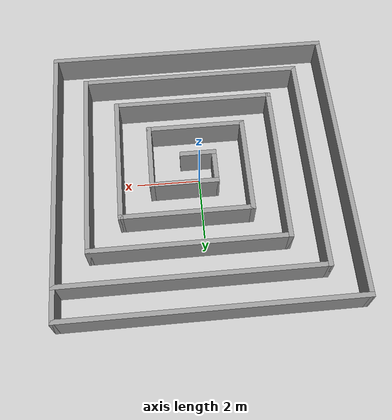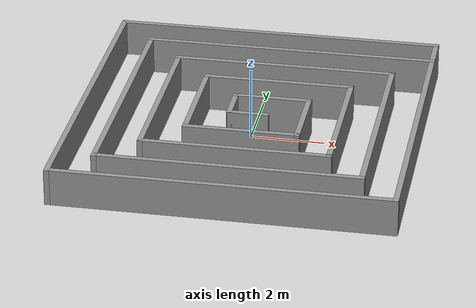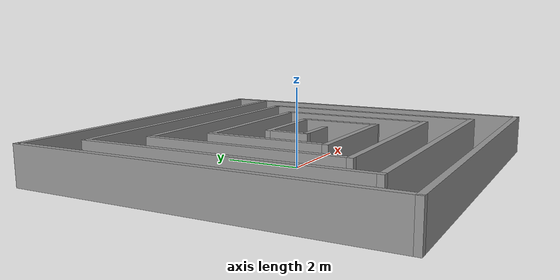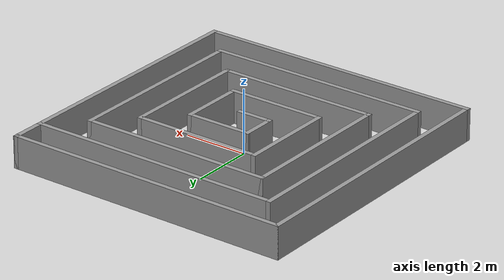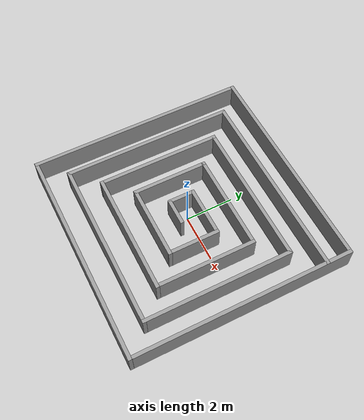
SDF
<?xml version='1.0'?>
<sdf version='1.6'>
  <model name='ModelRoom10'>
    <pose frame=''>0 0 0 0 -0 0</pose>
    <link name='Wall_0'>
      <collision name='Wall_0_Collision'>
        <geometry>
          <box>
            <size>1.15 0.15 1</size>
          </box>
        </geometry>
        <pose frame=''>0 0 0.5 0 -0 0</pose>
      </collision>
      <visual name='Wall_0_Visual'>
        <pose frame=''>0 0 0.5 0 -0 0</pose>
        <geometry>
          <box>
            <size>1.15 0.15 1</size>
          </box>
        </geometry>
        <material>
          <script>
            <uri>file://media/materials/scripts/gazebo.material</uri>
            <name>Gazebo/Grey</name>
          </script>
          <ambient>1 1 1 1</ambient>
        </material>
      </visual>
      <pose frame=''>-0.5 0 0 0 0 -1.5708</pose>
    </link>
    <link name='Wall_10'>
      <collision name='Wall_10_Collision'>
        <geometry>
          <box>
            <size>2.15 0.15 1</size>
          </box>
        </geometry>
        <pose frame=''>0 0 0.5 0 -0 0</pose>
      </collision>
      <visual name='Wall_10_Visual'>
        <pose frame=''>0 0 0.5 0 -0 0</pose>
        <geometry>
          <box>
            <size>2.15 0.15 1</size>
          </box>
        </geometry>
        <material>
          <script>
            <uri>file://media/materials/scripts/gazebo.material</uri>
            <name>Gazebo/Grey</name>
          </script>
          <ambient>1 1 1 1</ambient>
        </material>
      </visual>
      <pose frame=''>1.5 -0.5 0 0 0 -1.5708</pose>
    </link>
    <link name='Wall_12'>
      <collision name='Wall_12_Collision'>
        <geometry>
          <box>
            <size>4.15 0.15 1</size>
          </box>
        </geometry>
        <pose frame=''>0 0 0.5 0 -0 0</pose>
      </collision>
      <visual name='Wall_12_Visual'>
        <pose frame=''>0 0 0.5 0 -0 0</pose>
        <geometry>
          <box>
            <size>4.15 0.15 1</size>
          </box>
        </geometry>
        <material>
          <script>
            <uri>file://media/materials/scripts/gazebo.material</uri>
            <name>Gazebo/Grey</name>
          </script>
          <ambient>1 1 1 1</ambient>
        </material>
      </visual>
      <pose frame=''>2.5 -0.5 0 0 0 -1.5708</pose>
    </link>
    <link name='Wall_14'>
      <collision name='Wall_14_Collision'>
        <geometry>
          <box>
            <size>9.15 0.15 1</size>
          </box>
        </geometry>
        <pose frame=''>0 0 0.5 0 -0 0</pose>
      </collision>
      <visual name='Wall_14_Visual'>
        <pose frame=''>0 0 0.5 0 -0 0</pose>
        <geometry>
          <box>
            <size>9.15 0.15 1</size>
          </box>
        </geometry>
        <material>
          <script>
            <uri>file://media/materials/scripts/gazebo.material</uri>
            <name>Gazebo/Grey</name>
          </script>
          <ambient>1 1 1 1</ambient>
        </material>
      </visual>
      <pose frame=''>4.5 0 0 0 0 -1.5708</pose>
    </link>
    <link name='Wall_16'>
      <collision name='Wall_16_Collision'>
        <geometry>
          <box>
            <size>6.15 0.15 1</size>
          </box>
        </geometry>
        <pose frame=''>0 0 0.5 0 -0 0</pose>
      </collision>
      <visual name='Wall_16_Visual'>
        <pose frame=''>0 0 0.5 0 -0 0</pose>
        <geometry>
          <box>
            <size>6.15 0.15 1</size>
          </box>
        </geometry>
        <material>
          <script>
            <uri>file://media/materials/scripts/gazebo.material</uri>
            <name>Gazebo/Grey</name>
          </script>
          <ambient>1 1 1 1</ambient>
        </material>
      </visual>
      <pose frame=''>3.5 -0.5 0 0 0 -1.5708</pose>
    </link>
    <link name='Wall_18'>
      <collision name='Wall_18_Collision'>
        <geometry>
          <box>
            <size>2.15 0.15 1</size>
          </box>
        </geometry>
        <pose frame=''>0 0 0.5 0 -0 0</pose>
      </collision>
      <visual name='Wall_18_Visual'>
        <pose frame=''>0 0 0.5 0 -0 0</pose>
        <geometry>
          <box>
            <size>2.15 0.15 1</size>
          </box>
        </geometry>
        <material>
          <script>
            <uri>file://media/materials/scripts/gazebo.material</uri>
            <name>Gazebo/Grey</name>
          </script>
          <ambient>1 1 1 1</ambient>
        </material>
      </visual>
      <pose frame=''>0.5 0.5 0 0 -0 0</pose>
    </link>
    <link name='Wall_2'>
      <collision name='Wall_2_Collision'>
        <geometry>
          <box>
            <size>3.15 0.15 1</size>
          </box>
        </geometry>
        <pose frame=''>0 0 0.5 0 -0 0</pose>
      </collision>
      <visual name='Wall_2_Visual'>
        <pose frame=''>0 0 0.5 0 -0 0</pose>
        <geometry>
          <box>
            <size>3.15 0.15 1</size>
          </box>
        </geometry>
        <material>
          <script>
            <uri>file://media/materials/scripts/gazebo.material</uri>
            <name>Gazebo/Grey</name>
          </script>
          <ambient>1 1 1 1</ambient>
        </material>
      </visual>
      <pose frame=''>-1.5 0 0 0 -0 1.5708</pose>
    </link>
    <link name='Wall_20'>
      <collision name='Wall_20_Collision'>
        <geometry>
          <box>
            <size>4.15 0.15 1</size>
          </box>
        </geometry>
        <pose frame=''>0 0 0.5 0 -0 0</pose>
      </collision>
      <visual name='Wall_20_Visual'>
        <pose frame=''>0 0 0.5 0 -0 0</pose>
        <geometry>
          <box>
            <size>4.15 0.15 1</size>
          </box>
        </geometry>
        <material>
          <script>
            <uri>file://media/materials/scripts/gazebo.material</uri>
            <name>Gazebo/Grey</name>
          </script>
          <ambient>1 1 1 1</ambient>
        </material>
      </visual>
      <pose frame=''>0.5 1.5 0 0 -0 0</pose>
    </link>
    <link name='Wall_22'>
      <collision name='Wall_22_Collision'>
        <geometry>
          <box>
            <size>6.15 0.15 1</size>
          </box>
        </geometry>
        <pose frame=''>0 0 0.5 0 -0 0</pose>
      </collision>
      <visual name='Wall_22_Visual'>
        <pose frame=''>0 0 0.5 0 -0 0</pose>
        <geometry>
          <box>
            <size>6.15 0.15 1</size>
          </box>
        </geometry>
        <material>
          <script>
            <uri>file://media/materials/scripts/gazebo.material</uri>
            <name>Gazebo/Grey</name>
          </script>
          <ambient>1 1 1 1</ambient>
        </material>
      </visual>
      <pose frame=''>0.5 2.5 0 0 -0 0</pose>
    </link>
    <link name='Wall_24'>
      <collision name='Wall_24_Collision'>
        <geometry>
          <box>
            <size>8.15 0.15 1</size>
          </box>
        </geometry>
        <pose frame=''>0 0 0.5 0 -0 0</pose>
      </collision>
      <visual name='Wall_24_Visual'>
        <pose frame=''>0 0 0.5 0 -0 0</pose>
        <geometry>
          <box>
            <size>8.15 0.15 1</size>
          </box>
        </geometry>
        <material>
          <script>
            <uri>file://media/materials/scripts/gazebo.material</uri>
            <name>Gazebo/Grey</name>
          </script>
          <ambient>1 1 1 1</ambient>
        </material>
      </visual>
      <pose frame=''>0.5 3.5 0 0 -0 0</pose>
    </link>
    <link name='Wall_26'>
      <collision name='Wall_26_Collision'>
        <geometry>
          <box>
            <size>9.15 0.15 1</size>
          </box>
        </geometry>
        <pose frame=''>0 0 0.5 0 -0 0</pose>
      </collision>
      <visual name='Wall_26_Visual'>
        <pose frame=''>0 0 0.5 0 -0 0</pose>
        <geometry>
          <box>
            <size>9.15 0.15 1</size>
          </box>
        </geometry>
        <material>
          <script>
            <uri>file://media/materials/scripts/gazebo.material</uri>
            <name>Gazebo/Grey</name>
          </script>
          <ambient>1 1 1 1</ambient>
        </material>
      </visual>
      <pose frame=''>0 4.5 0 0 -0 0</pose>
    </link>
    <link name='Wall_28'>
      <collision name='Wall_28_Collision'>
        <geometry>
          <box>
            <size>1.15 0.15 1</size>
          </box>
        </geometry>
        <pose frame=''>0 0 0.5 0 -0 0</pose>
      </collision>
      <visual name='Wall_28_Visual'>
        <pose frame=''>0 0 0.5 0 -0 0</pose>
        <geometry>
          <box>
            <size>1.15 0.15 1</size>
          </box>
        </geometry>
        <material>
          <script>
            <uri>file://media/materials/scripts/gazebo.material</uri>
            <name>Gazebo/Grey</name>
          </script>
          <ambient>1 1 1 1</ambient>
        </material>
      </visual>
      <pose frame=''>0 -0.5 0 0 -0 0</pose>
    </link>
    <link name='Wall_30'>
      <collision name='Wall_30_Collision'>
        <geometry>
          <box>
            <size>3.15 0.15 1</size>
          </box>
        </geometry>
        <pose frame=''>0 0 0.5 0 -0 0</pose>
      </collision>
      <visual name='Wall_30_Visual'>
        <pose frame=''>0 0 0.5 0 -0 0</pose>
        <geometry>
          <box>
            <size>3.15 0.15 1</size>
          </box>
        </geometry>
        <material>
          <script>
            <uri>file://media/materials/scripts/gazebo.material</uri>
            <name>Gazebo/Grey</name>
          </script>
          <ambient>1 1 1 1</ambient>
        </material>
      </visual>
      <pose frame=''>0 -1.5 0 0 -0 0</pose>
    </link>
    <link name='Wall_32'>
      <collision name='Wall_32_Collision'>
        <geometry>
          <box>
            <size>5.15 0.15 1</size>
          </box>
        </geometry>
        <pose frame=''>0 0 0.5 0 -0 0</pose>
      </collision>
      <visual name='Wall_32_Visual'>
        <pose frame=''>0 0 0.5 0 -0 0</pose>
        <geometry>
          <box>
            <size>5.15 0.15 1</size>
          </box>
        </geometry>
        <material>
          <script>
            <uri>file://media/materials/scripts/gazebo.material</uri>
            <name>Gazebo/Grey</name>
          </script>
          <ambient>1 1 1 1</ambient>
        </material>
      </visual>
      <pose frame=''>0 -2.5 0 0 -0 3.14159</pose>
    </link>
    <link name='Wall_34'>
      <collision name='Wall_34_Collision'>
        <geometry>
          <box>
            <size>7.15 0.15 1</size>
          </box>
        </geometry>
        <pose frame=''>0 0 0.5 0 -0 0</pose>
      </collision>
      <visual name='Wall_34_Visual'>
        <pose frame=''>0 0 0.5 0 -0 0</pose>
        <geometry>
          <box>
            <size>7.15 0.15 1</size>
          </box>
        </geometry>
        <material>
          <script>
            <uri>file://media/materials/scripts/gazebo.material</uri>
            <name>Gazebo/Grey</name>
          </script>
          <ambient>1 1 1 1</ambient>
        </material>
      </visual>
      <pose frame=''>0 -3.5 0 0 -0 3.14159</pose>
    </link>
    <link name='Wall_36'>
      <collision name='Wall_36_Collision'>
        <geometry>
          <box>
            <size>9.15 0.15 1</size>
          </box>
        </geometry>
        <pose frame=''>0 0 0.5 0 -0 0</pose>
      </collision>
      <visual name='Wall_36_Visual'>
        <pose frame=''>0 0 0.5 0 -0 0</pose>
        <geometry>
          <box>
            <size>9.15 0.15 1</size>
          </box>
        </geometry>
        <material>
          <script>
            <uri>file://media/materials/scripts/gazebo.material</uri>
            <name>Gazebo/Grey</name>
          </script>
          <ambient>1 1 1 1</ambient>
        </material>
      </visual>
      <pose frame=''>0 -4.5 0 0 -0 3.14159</pose>
    </link>
    <link name='Wall_4'>
      <collision name='Wall_4_Collision'>
        <geometry>
          <box>
            <size>5.15 0.15 1</size>
          </box>
        </geometry>
        <pose frame=''>0 0 0.5 0 -0 0</pose>
      </collision>
      <visual name='Wall_4_Visual'>
        <pose frame=''>0 0 0.5 0 -0 0</pose>
        <geometry>
          <box>
            <size>5.15 0.15 1</size>
          </box>
        </geometry>
        <material>
          <script>
            <uri>file://media/materials/scripts/gazebo.material</uri>
            <name>Gazebo/Grey</name>
          </script>
          <ambient>1 1 1 1</ambient>
        </material>
      </visual>
      <pose frame=''>-2.5 0 0 0 -0 1.5708</pose>
    </link>
    <link name='Wall_6'>
      <collision name='Wall_6_Collision'>
        <geometry>
          <box>
            <size>7.15 0.15 1</size>
          </box>
        </geometry>
        <pose frame=''>0 0 0.5 0 -0 0</pose>
      </collision>
      <visual name='Wall_6_Visual'>
        <pose frame=''>0 0 0.5 0 -0 0</pose>
        <geometry>
          <box>
            <size>7.15 0.15 1</size>
          </box>
        </geometry>
        <material>
          <script>
            <uri>file://media/materials/scripts/gazebo.material</uri>
            <name>Gazebo/Grey</name>
          </script>
          <ambient>1 1 1 1</ambient>
        </material>
      </visual>
      <pose frame=''>-3.5 0 0 0 -0 1.5708</pose>
    </link>
    <link name='Wall_8'>
      <collision name='Wall_8_Collision'>
        <geometry>
          <box>
            <size>9.15 0.15 1</size>
          </box>
        </geometry>
        <pose frame=''>0 0 0.5 0 -0 0</pose>
      </collision>
      <visual name='Wall_8_Visual'>
        <pose frame=''>0 0 0.5 0 -0 0</pose>
        <geometry>
          <box>
            <size>9.15 0.15 1</size>
          </box>
        </geometry>
        <material>
          <script>
            <uri>file://media/materials/scripts/gazebo.material</uri>
            <name>Gazebo/Grey</name>
          </script>
          <ambient>1 1 1 1</ambient>
        </material>
      </visual>
      <pose frame=''>-4.5 0 0 0 -0 1.5708</pose>
    </link>
    <static>1</static>
  </model>
</sdf>
